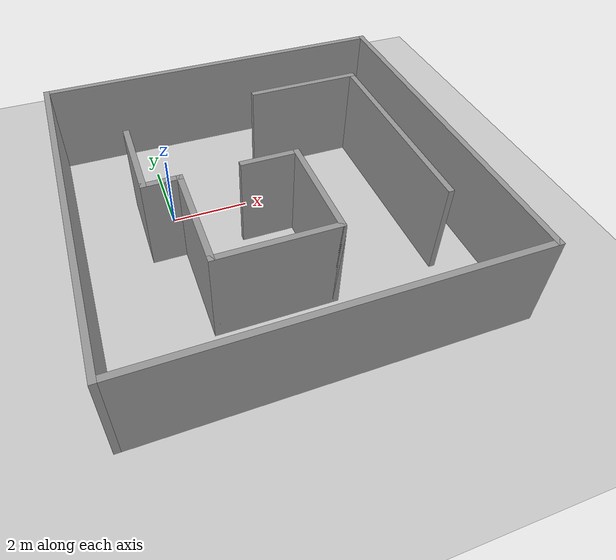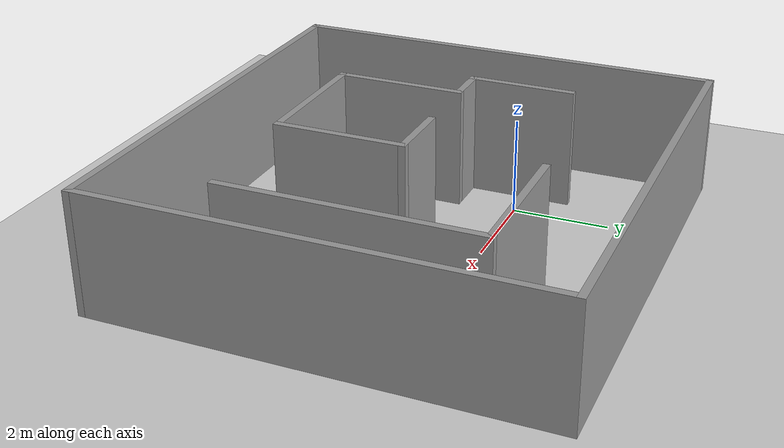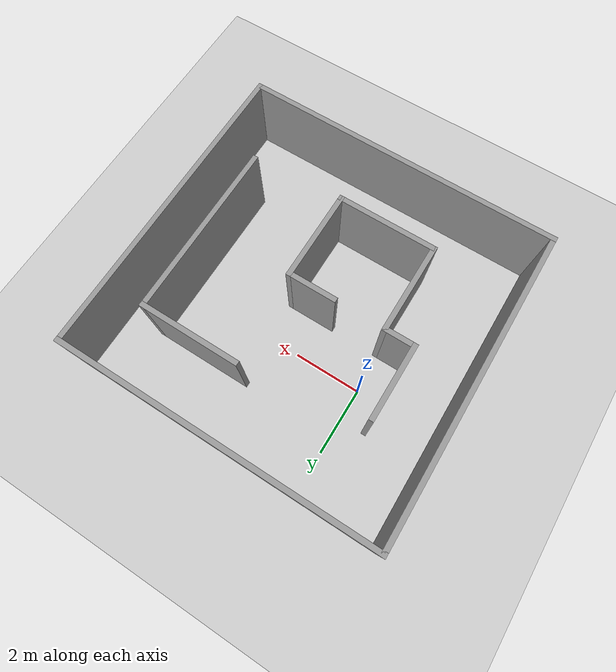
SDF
<sdf version="1.7">
 <world name="default">
  <light name="sun" type="directional">
   <pose>0 0 10 0 -0 0</pose>
   <diffuse>0.8 0.8 0.8 1</diffuse>
   <specular>0.2 0.2 0.2 1</specular>
   <attenuation>
    <range>1000</range>
    <constant>0.9</constant>
    <linear>0.01</linear>
    <quadratic>0.001</quadratic>
   </attenuation>
   <direction>-0.5 0.1 -0.9</direction>
   <spot><inner_angle>0</inner_angle><outer_angle>0</outer_angle><falloff>0</falloff></spot>
  </light>
  <model name="ground_plane">
   <static>1</static>
   <link name="link">
    <collision name="collision">
     <geometry><plane><normal>0 0 1</normal><size>100 100</size></plane></geometry>
     <surface>
      <contact><collide_bitmask>65535</collide_bitmask></contact>
      <friction><ode><mu>100</mu><mu2>50</mu2></ode></friction>
     </surface>
    </collision>
    <visual name="visual">
     <cast_shadows>0</cast_shadows>
     <geometry><plane><normal>0 0 1</normal><size>100 100</size></plane></geometry>
     <material>
      <script><uri>file://media/materials/scripts/gazebo.material</uri><name>Gazebo/Grey</name></script>
     </material>
    </visual>
   </link>
  </model>
  <gravity>0 0 -9.8</gravity>
  <magnetic_field>6e-06 2.3e-05 -4.2e-05</magnetic_field>
  <atmosphere type="adiabatic"/>
  <physics type="ode">
   <max_step_size>0.001</max_step_size>
   <real_time_factor>1</real_time_factor>
   <real_time_update_rate>1000</real_time_update_rate>
  </physics>
  <scene><ambient>0.4 0.4 0.4 1</ambient><background>0.7 0.7 0.7 1</background><shadows>1</shadows></scene>
  <spherical_coordinates>
   <surface_model>EARTH_WGS84</surface_model>
   <latitude_deg>0</latitude_deg>
   <longitude_deg>0</longitude_deg>
   <elevation>0</elevation>
   <heading_deg>0</heading_deg>
  </spherical_coordinates>
  <model name="world">
   <pose>2.21343 -1.21225 0 0 -0 0</pose>
   <link name="Wall_0">
    <collision name="Wall_0_Collision">
     <geometry><box><size>9.25 0.15 2.5</size></box></geometry>
     <pose>0 0 1.25 0 -0 0</pose>
    </collision>
    <visual name="Wall_0_Visual">
     <pose>0 0 1.25 0 -0 0</pose>
     <geometry><box><size>9.25 0.15 2.5</size></box></geometry>
     <material>
      <script><uri>file://media/materials/scripts/gazebo.material</uri><name>Gazebo/Grey</name></script>
      <ambient>1 1 1 1</ambient>
     </material>
     <meta><layer>0</layer></meta>
    </visual>
    <pose>-4.675 -0 0 0 -0 1.5708</pose>
   </link>
   <link name="Wall_10">
    <collision name="Wall_10_Collision">
     <geometry><box><size>2.75 0.15 2.5</size></box></geometry>
     <pose>0 0 1.25 0 -0 0</pose>
    </collision>
    <visual name="Wall_10_Visual">
     <pose>0 0 1.25 0 -0 0</pose>
     <geometry><box><size>2.75 0.15 2.5</size></box></geometry>
     <material>
      <script><uri>file://media/materials/scripts/gazebo.material</uri><name>Gazebo/Grey</name></script>
      <ambient>1 1 1 1</ambient>
     </material>
     <meta><layer>0</layer></meta>
    </visual>
    <pose>0.742681 -1.31388 0 0 -0 1.5708</pose>
   </link>
   <link name="Wall_11">
    <collision name="Wall_11_Collision">
     <geometry><box><size>1.5 0.15 2.5</size></box></geometry>
     <pose>0 0 1.25 0 -0 0</pose>
    </collision>
    <visual name="Wall_11_Visual">
     <pose>0 0 1.25 0 -0 0</pose>
     <geometry><box><size>1.5 0.15 2.5</size></box></geometry>
     <material>
      <script><uri>file://media/materials/scripts/gazebo.material</uri><name>Gazebo/Grey</name></script>
      <ambient>1 1 1 1</ambient>
     </material>
     <meta><layer>0</layer></meta>
    </visual>
    <pose>0.067681 -0.013884 0 0 -0 3.14159</pose>
   </link>
   <link name="Wall_13">
    <collision name="Wall_13_Collision">
     <geometry><box><size>3 0.15 2.5</size></box></geometry>
     <pose>0 0 1.25 0 -0 0</pose>
    </collision>
    <visual name="Wall_13_Visual">
     <pose>0 0 1.25 0 -0 0</pose>
     <geometry><box><size>3 0.15 2.5</size></box></geometry>
     <material>
      <script><uri>file://media/materials/scripts/gazebo.material</uri><name>Gazebo/Grey</name></script>
      <ambient>1 1 1 1</ambient>
     </material>
     <meta><layer>0</layer></meta>
    </visual>
    <pose>2.02074 2.68415 0 0 -0 0</pose>
   </link>
   <link name="Wall_14">
    <collision name="Wall_14_Collision">
     <geometry><box><size>5.25 0.15 2.5</size></box></geometry>
     <pose>0 0 1.25 0 -0 0</pose>
    </collision>
    <visual name="Wall_14_Visual">
     <pose>0 0 1.25 0 -0 0</pose>
     <geometry><box><size>5.25 0.15 2.5</size></box></geometry>
     <material>
      <script><uri>file://media/materials/scripts/gazebo.material</uri><name>Gazebo/Grey</name></script>
      <ambient>1 1 1 1</ambient>
     </material>
     <meta><layer>0</layer></meta>
    </visual>
    <pose>3.44574 0.134154 0 0 -0 -1.5708</pose>
   </link>
   <link name="Wall_2">
    <collision name="Wall_2_Collision">
     <geometry><box><size>9.5 0.15 2.5</size></box></geometry>
     <pose>0 0 1.25 0 -0 0</pose>
    </collision>
    <visual name="Wall_2_Visual">
     <pose>0 0 1.25 0 -0 0</pose>
     <geometry><box><size>9.5 0.15 2.5</size></box></geometry>
     <material>
      <script><uri>file://media/materials/scripts/gazebo.material</uri><name>Gazebo/Grey</name></script>
      <ambient>1 1 1 1</ambient>
     </material>
     <meta><layer>0</layer></meta>
    </visual>
    <pose>-0 4.55 0 0 -0 0</pose>
   </link>
   <link name="Wall_3">
    <collision name="Wall_3_Collision">
     <geometry><box><size>9.25 0.15 2.5</size></box></geometry>
     <pose>0 0 1.25 0 -0 0</pose>
    </collision>
    <visual name="Wall_3_Visual">
     <pose>0 0 1.25 0 -0 0</pose>
     <geometry><box><size>9.25 0.15 2.5</size></box></geometry>
     <material>
      <script><uri>file://media/materials/scripts/gazebo.material</uri><name>Gazebo/Grey</name></script>
      <ambient>1 1 1 1</ambient>
     </material>
     <meta><layer>0</layer></meta>
    </visual>
    <pose>4.675 -0 0 0 -0 -1.5708</pose>
   </link>
   <link name="Wall_4">
    <collision name="Wall_4_Collision">
     <geometry><box><size>9.5 0.15 2.5</size></box></geometry>
     <pose>0 0 1.25 0 -0 0</pose>
    </collision>
    <visual name="Wall_4_Visual">
     <pose>0 0 1.25 0 -0 0</pose>
     <geometry><box><size>9.5 0.15 2.5</size></box></geometry>
     <material>
      <script><uri>file://media/materials/scripts/gazebo.material</uri><name>Gazebo/Grey</name></script>
      <ambient>1 1 1 1</ambient>
     </material>
     <meta><layer>0</layer></meta>
    </visual>
    <pose>-0 -4.55 0 0 -0 3.14159</pose>
   </link>
   <link name="Wall_6">
    <collision name="Wall_6_Collision">
     <geometry><box><size>2.25 0.15 2.5</size></box></geometry>
     <pose>0 0 1.25 0 -0 0</pose>
    </collision>
    <visual name="Wall_6_Visual">
     <pose>0 0 1.25 0 -0 0</pose>
     <geometry><box><size>2.25 0.15 2.5</size></box></geometry>
     <material>
      <script><uri>file://media/materials/scripts/gazebo.material</uri><name>Gazebo/Grey</name></script>
      <ambient>1 1 1 1</ambient>
     </material>
     <meta><layer>0</layer></meta>
    </visual>
    <pose>-2.95732 1.03612 0 0 -0 -1.5708</pose>
   </link>
   <link name="Wall_7">
    <collision name="Wall_7_Collision">
     <geometry><box><size>1 0.15 2.5</size></box></geometry>
     <pose>0 0 1.25 0 -0 0</pose>
    </collision>
    <visual name="Wall_7_Visual">
     <pose>0 0 1.25 0 -0 0</pose>
     <geometry><box><size>1 0.15 2.5</size></box></geometry>
     <material>
      <script><uri>file://media/materials/scripts/gazebo.material</uri><name>Gazebo/Grey</name></script>
      <ambient>1 1 1 1</ambient>
     </material>
     <meta><layer>0</layer></meta>
    </visual>
    <pose>-2.53232 -0.013884 0 0 -0 0</pose>
   </link>
   <link name="Wall_8">
    <collision name="Wall_8_Collision">
     <geometry><box><size>2.75 0.15 2.5</size></box></geometry>
     <pose>0 0 1.25 0 -0 0</pose>
    </collision>
    <visual name="Wall_8_Visual">
     <pose>0 0 1.25 0 -0 0</pose>
     <geometry><box><size>2.75 0.15 2.5</size></box></geometry>
     <material>
      <script><uri>file://media/materials/scripts/gazebo.material</uri><name>Gazebo/Grey</name></script>
      <ambient>1 1 1 1</ambient>
     </material>
     <meta><layer>0</layer></meta>
    </visual>
    <pose>-2.10732 -1.31388 0 0 -0 -1.5708</pose>
   </link>
   <link name="Wall_9">
    <collision name="Wall_9_Collision">
     <geometry><box><size>3 0.15 2.5</size></box></geometry>
     <pose>0 0 1.25 0 -0 0</pose>
    </collision>
    <visual name="Wall_9_Visual">
     <pose>0 0 1.25 0 -0 0</pose>
     <geometry><box><size>3 0.15 2.5</size></box></geometry>
     <material>
      <script><uri>file://media/materials/scripts/gazebo.material</uri><name>Gazebo/Grey</name></script>
      <ambient>1 1 1 1</ambient>
     </material>
     <meta><layer>0</layer></meta>
    </visual>
    <pose>-0.682319 -2.61388 0 0 -0 0</pose>
   </link>
   <static>1</static>
  </model>
 </world>
</sdf>
